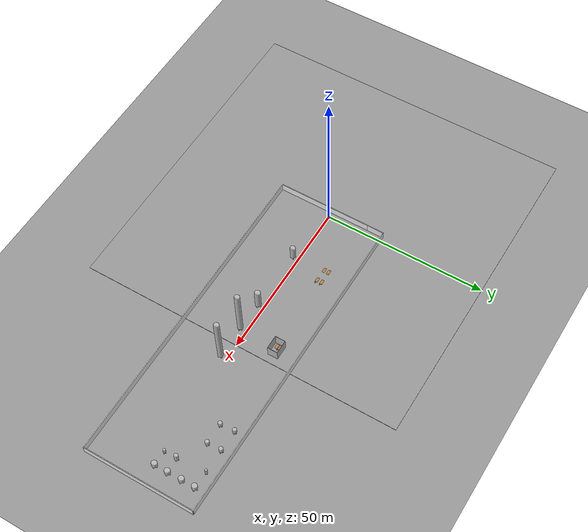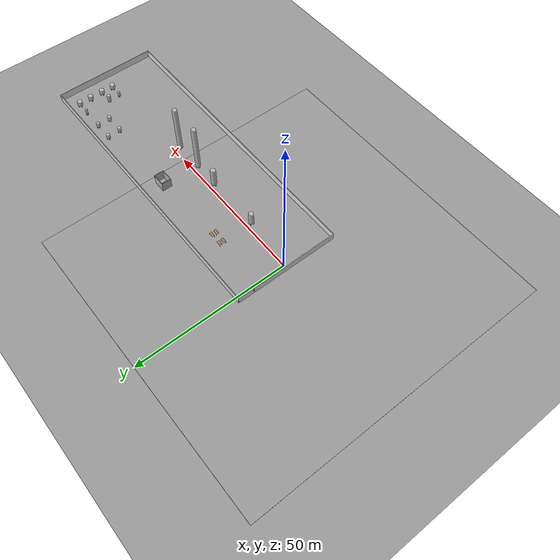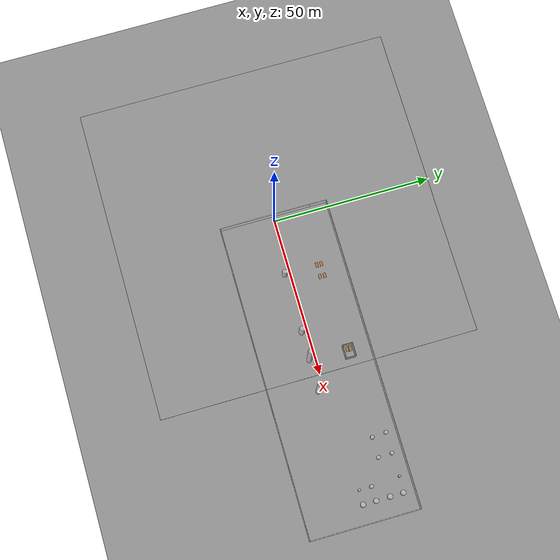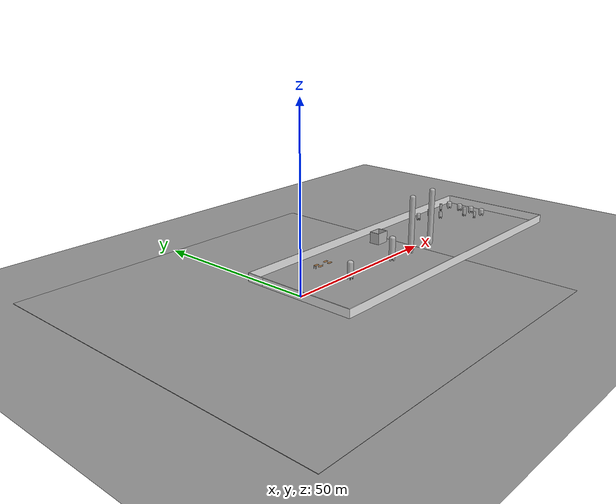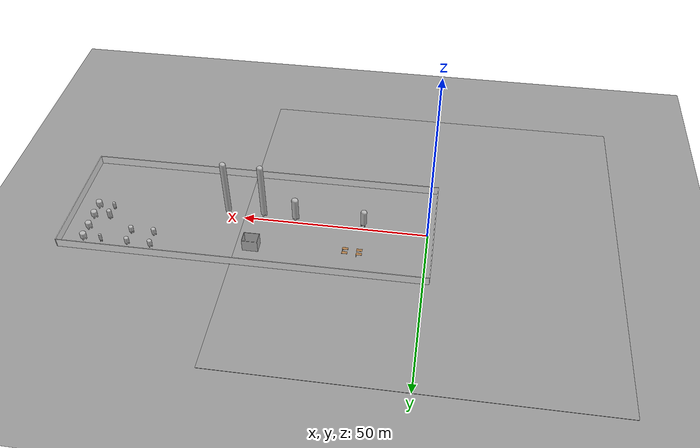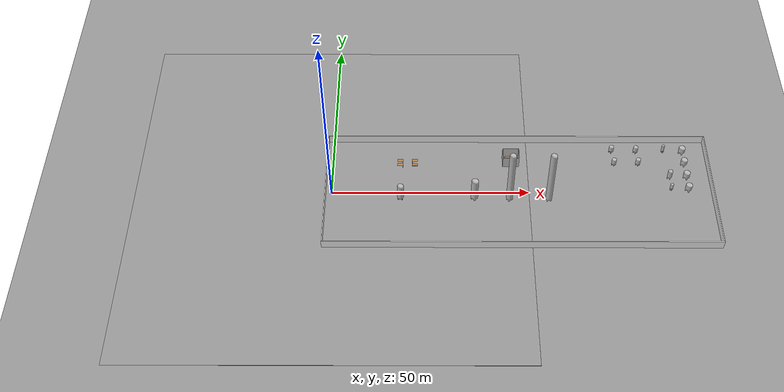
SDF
<sdf version="1.4">
 <world name="default">
  <model name="fen_li">
   <link name="fen_li">
    <inertial>
     <pose>7.446e-16 -1.0299 6.10863e-17 0 -0 0</pose>
     <mass>878.42</mass>
     <inertia>
      <ixx>368.416</ixx>
      <ixy>-7.33154e-13</ixy>
      <ixz>2.02177e-16</ixz>
      <iyy>62.3173</iyy>
      <iyz>1.79271e-14</iyz>
      <izz>368.416</izz>
     </inertia>
    </inertial>
    <collision name="fen_li_collision">
     <pose>0 0 0 1.5708 -0 0</pose>
     <geometry><mesh><scale>1 1 1</scale><uri>model://fen_li/meshes/fen_li.STL</uri></mesh></geometry>
    </collision>
    <visual name="fen_li_visual">
     <pose>0 0 0 1.5708 -0 0</pose>
     <geometry><mesh><scale>1 1 1</scale><uri>model://fen_li/meshes/fen_li.STL</uri></mesh></geometry>
    </visual>
    <velocity_decay><linear>0</linear><angular>0</angular></velocity_decay>
   </link>
   <pose>85.6471 13.8557 2.5 1.57079 6e-06 2.88261</pose>
   <static>0</static>
  </model>
  <model name="R1501">
   <link name="R1501">
    <inertial>
     <pose>1.0225e-15 -0.88398 5.22725e-17 0 -0 0</pose>
     <mass>822.78</mass>
     <inertia>
      <ixx>260.169</ixx>
      <ixy>-8.22438e-13</ixy>
      <ixz>3.24849e-16</ixz>
      <iyy>66.0733</iyy>
      <iyz>1.14038e-14</iyz>
      <izz>260.169</izz>
     </inertia>
    </inertial>
    <collision name="R1501_collision">
     <pose>0 0 0 1.5708 -0 0</pose>
     <geometry><mesh><scale>1 1 1</scale><uri>model://R1501/meshes/R1501.STL</uri></mesh></geometry>
    </collision>
    <visual name="R1501_visual">
     <pose>0 0 0 1.5708 -0 0</pose>
     <geometry><mesh><scale>1 1 1</scale><uri>model://R1501/meshes/R1501.STL</uri></mesh></geometry>
    </visual>
    <velocity_decay><linear>0</linear><angular>0</angular></velocity_decay>
   </link>
   <pose>86.3008 1.22061 2.2 1.57079 8e-06 0.053566</pose>
   <static>0</static>
  </model>
  <model name="T1302">
   <link name="T1302">
    <inertial>
     <pose>3.0268e-05 -3.0578 1.6594e-05 0 -0 0</pose>
     <mass>16697</mass>
     <inertia>
      <ixx>64278.2</ixx>
      <ixy>1.72229</ixy>
      <ixz>-8.3864e-06</ixz>
      <iyy>6721.57</iyy>
      <iyz>-0.944222</iyz>
      <izz>64279</izz>
     </inertia>
    </inertial>
    <collision name="T1302_collision">
     <pose>0 0 0 1.5708 -0 0</pose>
     <geometry><mesh><scale>1 1 1</scale><uri>model://T1302/meshes/T1302.STL</uri></mesh></geometry>
    </collision>
    <visual name="T1302_visual">
     <pose>0 0 0 1.5708 -0 0</pose>
     <geometry><mesh><scale>1 1 1</scale><uri>model://T1302/meshes/T1302.STL</uri></mesh></geometry>
    </visual>
    <velocity_decay><linear>0</linear><angular>0</angular></velocity_decay>
   </link>
   <pose>36.086 -1.71425 0.7 -1.5708 -0 0.078369</pose>
   <static>0</static>
  </model>
  <model name="T1501">
   <link name="T1501">
    <inertial>
     <pose>-6.1525e-05 -1.2595 -3.0762e-05 0 -0 0</pose>
     <mass>2677.9</mass>
     <inertia>
      <ixx>1632.16</ixx>
      <ixy>0.220862</ixy>
      <ixz>-5.06835e-06</ixz>
      <iyy>481.151</iyy>
      <iyz>-0.110431</iyz>
      <izz>1632.31</izz>
     </inertia>
    </inertial>
    <collision name="T1501_collision">
     <pose>0 0 0 1.5708 -0 0</pose>
     <geometry><mesh><scale>1 1 1</scale><uri>model://T1501/meshes/T1501.STL</uri></mesh></geometry>
    </collision>
    <visual name="T1501_visual">
     <pose>0 0 0 1.5708 -0 0</pose>
     <geometry><mesh><scale>1 1 1</scale><uri>model://T1501/meshes/T1501.STL</uri></mesh></geometry>
    </visual>
    <velocity_decay><linear>0</linear><angular>0</angular></velocity_decay>
   </link>
   <pose>86.2855 4.99871 2.95 1.57079 -3e-06 0.210719</pose>
   <static>0</static>
  </model>
  <model name="v1301">
   <link name="v1301">
    <inertial>
     <pose>-2.9698e-17 -2.1428 -7.9195e-06 0 -0 0</pose>
     <mass>9579.6</mass>
     <inertia>
      <ixx>17997.8</ixx>
      <ixy>-4.99284e-13</ixy>
      <ixz>-3.51778e-15</ixz>
      <iyy>3237.68</iyy>
      <iyz>0.189116</iyz>
      <izz>17997.9</izz>
     </inertia>
    </inertial>
    <collision name="v1301_collision">
     <pose>0 0 0 1.5708 -0 0</pose>
     <geometry><mesh><scale>1 1 1</scale><uri>model://v1301/meshes/v1301.STL</uri></mesh></geometry>
    </collision>
    <visual name="v1301_visual">
     <pose>0 0 0 1.5708 -0 0</pose>
     <geometry><mesh><scale>1 1 1</scale><uri>model://v1301/meshes/v1301.STL</uri></mesh></geometry>
    </visual>
    <velocity_decay><linear>0</linear><angular>0</angular></velocity_decay>
   </link>
   <pose>17.4218 -1.74122 0.700005 -1.57079 -3e-06 -0.971659</pose>
   <static>0</static>
  </model>
  <model name="xi_jian_ye">
   <link name="xi_jian_ye">
    <inertial>
     <pose>0.00017423 -0.62032 -0.00017423 0 -0 0</pose>
     <mass>3467.2</mass>
     <inertia>
      <ixx>1530.55</ixx>
      <ixy>0.586183</ixy>
      <ixz>-0.000931962</ixz>
      <iyy>1180.52</iyy>
      <iyz>0.586183</iyz>
      <izz>1530.55</izz>
     </inertia>
    </inertial>
    <collision name="xi_jian_ye_collision">
     <pose>0 0 0 1.5708 -0 0</pose>
     <geometry><mesh><scale>1 1 1</scale><uri>model://xi_jian_ye/meshes/xi_jian_ye.STL</uri></mesh></geometry>
    </collision>
    <visual name="xi_jian_ye_visual">
     <pose>0 0 0 1.5708 -0 0</pose>
     <geometry><mesh><scale>1 1 1</scale><uri>model://xi_jian_ye/meshes/xi_jian_ye.STL</uri></mesh></geometry>
    </visual>
    <velocity_decay><linear>0</linear><angular>0</angular></velocity_decay>
   </link>
   <pose>90.5802 13.5488 0.7 -1.5708 -3.46945e-18 0.048065</pose>
   <static>0</static>
  </model>
  <model name="xi _shou_jie_xi">
   <link name="xi _shou_jie_xi">
    <inertial>
     <pose>4.1904e-07 -8.4378 3.2931e-07 0 -0 0</pose>
     <mass>35590</mass>
     <inertia>
      <ixx>830006</ixx>
      <ixy>-0.125458</ixy>
      <ixz>-4.91125e-09</ixz>
      <iyy>12075.2</iyy>
      <iyz>0.0985924</iyz>
      <izz>830006</izz>
     </inertia>
    </inertial>
    <collision name="xi _shou_jie_xi_collision">
     <pose>0 0 0 1.5708 -0 0</pose>
     <geometry>
      <mesh><scale>1 1 1</scale><uri>model://xi _shou_jie_xi/meshes/xi _shou_jie_xi.STL</uri></mesh>
     </geometry>
    </collision>
    <visual name="xi _shou_jie_xi_visual">
     <pose>0 0 0 1.5708 -0 0</pose>
     <geometry>
      <mesh><scale>1 1 1</scale><uri>model://xi _shou_jie_xi/meshes/xi _shou_jie_xi.STL</uri></mesh>
     </geometry>
    </visual>
    <velocity_decay><linear>0</linear><angular>0</angular></velocity_decay>
   </link>
   <pose>44.9385 -1.97672 17.2 1.57079 -1e-06 2.99603</pose>
   <static>0</static>
  </model>
  <model name="ye_hua">
   <link name="ye_hua">
    <inertial>
     <pose>7.253e-17 -0.87808 1.33782e-16 0 -0 0</pose>
     <mass>1864.4</mass>
     <inertia>
      <ixx>689.15</ixx>
      <ixy>-1.59359e-13</ixy>
      <ixz>6.93603e-14</ixz>
      <iyy>337.927</iyy>
      <iyz>1.62166e-13</iyz>
      <izz>689.15</izz>
     </inertia>
    </inertial>
    <collision name="ye_hua_collision">
     <pose>0 0 0 1.5708 -0 0</pose>
     <geometry><mesh><scale>1 1 1</scale><uri>model://ye_hua/meshes/ye_hua.STL</uri></mesh></geometry>
    </collision>
    <visual name="ye_hua_visual">
     <pose>0 0 0 1.5708 -0 0</pose>
     <geometry><mesh><scale>1 1 1</scale><uri>model://ye_hua/meshes/ye_hua.STL</uri></mesh></geometry>
    </visual>
    <velocity_decay><linear>0</linear><angular>0</angular></velocity_decay>
   </link>
   <pose>78.5301 13.7445 2.2 1.57079 -1e-06 0.01207</pose>
   <static>0</static>
  </model>
  <model name="xi _shou_jie_xi_0">
   <link name="xi _shou_jie_xi">
    <inertial>
     <pose>4.1904e-07 -8.4378 3.2931e-07 0 -0 0</pose>
     <mass>35590</mass>
     <inertia>
      <ixx>830006</ixx>
      <ixy>-0.125458</ixy>
      <ixz>-4.91125e-09</ixz>
      <iyy>12075.2</iyy>
      <iyz>0.0985924</iyz>
      <izz>830006</izz>
     </inertia>
    </inertial>
    <collision name="xi _shou_jie_xi_collision">
     <pose>0 0 0 1.5708 -0 0</pose>
     <geometry>
      <mesh><scale>1 1 1</scale><uri>model://xi _shou_jie_xi/meshes/xi _shou_jie_xi.STL</uri></mesh>
     </geometry>
    </collision>
    <visual name="xi _shou_jie_xi_visual">
     <pose>0 0 0 1.5708 -0 0</pose>
     <geometry>
      <mesh><scale>1 1 1</scale><uri>model://xi _shou_jie_xi/meshes/xi _shou_jie_xi.STL</uri></mesh>
     </geometry>
    </visual>
    <velocity_decay><linear>0</linear><angular>0</angular></velocity_decay>
   </link>
   <pose>54.8757 -1.99512 17.2 1.57079 2e-06 -2.16664</pose>
   <static>0</static>
  </model>
  <model name="ye_hua_0">
   <link name="ye_hua">
    <inertial>
     <pose>7.253e-17 -0.87808 1.33782e-16 0 -0 0</pose>
     <mass>1864.4</mass>
     <inertia>
      <ixx>689.15</ixx>
      <ixy>-1.59359e-13</ixy>
      <ixz>6.93603e-14</ixz>
      <iyy>337.927</iyy>
      <iyz>1.62166e-13</iyz>
      <izz>689.15</izz>
     </inertia>
    </inertial>
    <collision name="ye_hua_collision">
     <pose>0 0 0 1.5708 -0 0</pose>
     <geometry><mesh><scale>1 1 1</scale><uri>model://ye_hua/meshes/ye_hua.STL</uri></mesh></geometry>
    </collision>
    <visual name="ye_hua_visual">
     <pose>0 0 0 1.5708 -0 0</pose>
     <geometry><mesh><scale>1 1 1</scale><uri>model://ye_hua/meshes/ye_hua.STL</uri></mesh></geometry>
    </visual>
    <velocity_decay><linear>0</linear><angular>0</angular></velocity_decay>
   </link>
   <pose>72.2072 13.8499 2.20001 1.57081 2e-06 -0.00253</pose>
   <static>0</static>
  </model>
  <model name="ye_hua_1">
   <link name="ye_hua">
    <inertial>
     <pose>7.253e-17 -0.87808 1.33782e-16 0 -0 0</pose>
     <mass>1864.4</mass>
     <inertia>
      <ixx>689.15</ixx>
      <ixy>-1.59359e-13</ixy>
      <ixz>6.93603e-14</ixz>
      <iyy>337.927</iyy>
      <iyz>1.62166e-13</iyz>
      <izz>689.15</izz>
     </inertia>
    </inertial>
    <collision name="ye_hua_collision">
     <pose>0 0 0 1.5708 -0 0</pose>
     <geometry><mesh><scale>1 1 1</scale><uri>model://ye_hua/meshes/ye_hua.STL</uri></mesh></geometry>
    </collision>
    <visual name="ye_hua_visual">
     <pose>0 0 0 1.5708 -0 0</pose>
     <geometry><mesh><scale>1 1 1</scale><uri>model://ye_hua/meshes/ye_hua.STL</uri></mesh></geometry>
    </visual>
    <velocity_decay><linear>0</linear><angular>0</angular></velocity_decay>
   </link>
   <pose>78.694 9.5274 2.2 1.57079 -0 0.005309</pose>
   <static>0</static>
  </model>
  <model name="ye_hua_2">
   <link name="ye_hua">
    <inertial>
     <pose>7.253e-17 -0.87808 1.33782e-16 0 -0 0</pose>
     <mass>1864.4</mass>
     <inertia>
      <ixx>689.15</ixx>
      <ixy>-1.59359e-13</ixy>
      <ixz>6.93603e-14</ixz>
      <iyy>337.927</iyy>
      <iyz>1.62166e-13</iyz>
      <izz>689.15</izz>
     </inertia>
    </inertial>
    <collision name="ye_hua_collision">
     <pose>0 0 0 1.5708 -0 0</pose>
     <geometry><mesh><scale>1 1 1</scale><uri>model://ye_hua/meshes/ye_hua.STL</uri></mesh></geometry>
    </collision>
    <visual name="ye_hua_visual">
     <pose>0 0 0 1.5708 -0 0</pose>
     <geometry><mesh><scale>1 1 1</scale><uri>model://ye_hua/meshes/ye_hua.STL</uri></mesh></geometry>
    </visual>
    <velocity_decay><linear>0</linear><angular>0</angular></velocity_decay>
   </link>
   <pose>72.4926 9.50476 2.2 1.5708 2e-06 -0.003768</pose>
   <static>0</static>
  </model>
  <model name="xi_jian_ye_0">
   <link name="xi_jian_ye">
    <inertial>
     <pose>0.00017423 -0.62032 -0.00017423 0 -0 0</pose>
     <mass>3467.2</mass>
     <inertia>
      <ixx>1530.55</ixx>
      <ixy>0.586183</ixy>
      <ixz>-0.000931962</ixz>
      <iyy>1180.52</iyy>
      <iyz>0.586183</iyz>
      <izz>1530.55</izz>
     </inertia>
    </inertial>
    <collision name="xi_jian_ye_collision">
     <pose>0 0 0 1.5708 -0 0</pose>
     <geometry><mesh><scale>1 1 1</scale><uri>model://xi_jian_ye/meshes/xi_jian_ye.STL</uri></mesh></geometry>
    </collision>
    <visual name="xi_jian_ye_visual">
     <pose>0 0 0 1.5708 -0 0</pose>
     <geometry><mesh><scale>1 1 1</scale><uri>model://xi_jian_ye/meshes/xi_jian_ye.STL</uri></mesh></geometry>
    </visual>
    <velocity_decay><linear>0</linear><angular>0</angular></velocity_decay>
   </link>
   <pose>90.5991 9.48083 0.700002 -1.5708 -2e-06 0.037426</pose>
   <static>0</static>
  </model>
  <model name="xi_jian_ye_1">
   <link name="xi_jian_ye">
    <inertial>
     <pose>0.00017423 -0.62032 -0.00017423 0 -0 0</pose>
     <mass>3467.2</mass>
     <inertia>
      <ixx>1530.55</ixx>
      <ixy>0.586183</ixy>
      <ixz>-0.000931962</ixz>
      <iyy>1180.52</iyy>
      <iyz>0.586183</iyz>
      <izz>1530.55</izz>
     </inertia>
    </inertial>
    <collision name="xi_jian_ye_collision">
     <pose>0 0 0 1.5708 -0 0</pose>
     <geometry><mesh><scale>1 1 1</scale><uri>model://xi_jian_ye/meshes/xi_jian_ye.STL</uri></mesh></geometry>
    </collision>
    <visual name="xi_jian_ye_visual">
     <pose>0 0 0 1.5708 -0 0</pose>
     <geometry><mesh><scale>1 1 1</scale><uri>model://xi_jian_ye/meshes/xi_jian_ye.STL</uri></mesh></geometry>
    </visual>
    <velocity_decay><linear>0</linear><angular>0</angular></velocity_decay>
   </link>
   <pose>90.6386 1.0942 0.700004 -1.5708 1e-06 -3.12011</pose>
   <static>0</static>
  </model>
  <model name="xi_jian_ye_2">
   <link name="xi_jian_ye">
    <inertial>
     <pose>0.00017423 -0.62032 -0.00017423 0 -0 0</pose>
     <mass>3467.2</mass>
     <inertia>
      <ixx>1530.55</ixx>
      <ixy>0.586183</ixy>
      <ixz>-0.000931962</ixz>
      <iyy>1180.52</iyy>
      <iyz>0.586183</iyz>
      <izz>1530.55</izz>
     </inertia>
    </inertial>
    <collision name="xi_jian_ye_collision">
     <pose>0 0 0 1.5708 -0 0</pose>
     <geometry><mesh><scale>1 1 1</scale><uri>model://xi_jian_ye/meshes/xi_jian_ye.STL</uri></mesh></geometry>
    </collision>
    <visual name="xi_jian_ye_visual">
     <pose>0 0 0 1.5708 -0 0</pose>
     <geometry><mesh><scale>1 1 1</scale><uri>model://xi_jian_ye/meshes/xi_jian_ye.STL</uri></mesh></geometry>
    </visual>
    <velocity_decay><linear>0</linear><angular>0</angular></velocity_decay>
   </link>
   <pose>90.6584 5.1583 0.7 -1.5708 1e-06 0.031675</pose>
   <static>0</static>
  </model>
  <model name="cui_hua">
   <pose>30.999 -11.225 0 0 -0 0</pose>
   <link name="Wall_10">
    <collision name="Wall_10_Collision">
     <geometry><box><size>34.3428 0.2 2.5</size></box></geometry>
     <pose>0 0 1.25 0 -0 0</pose>
    </collision>
    <visual name="Wall_10_Visual">
     <pose>0 0 1.25 0 -0 0</pose>
     <geometry><box><size>34.3428 0.2 2.5</size></box></geometry>
     <material>
      <script><uri>file://media/materials/scripts/gazebo.material</uri><name>Gazebo/White</name></script>
     </material>
    </visual>
    <velocity_decay><linear>0</linear><angular>0</angular></velocity_decay>
    <pose>65.5154 11.2938 0 0 -0 1.5708</pose>
   </link>
   <link name="Wall_11">
    <collision name="Wall_11_Collision">
     <geometry><box><size>98.3045 0.2 2.5</size></box></geometry>
     <pose>0 0 1.25 0 -0 0</pose>
    </collision>
    <visual name="Wall_11_Visual">
     <pose>0 0 1.25 0 -0 0</pose>
     <geometry><box><size>98.3045 0.2 2.5</size></box></geometry>
     <material>
      <script><uri>file://media/materials/scripts/gazebo.material</uri><name>Gazebo/White</name></script>
     </material>
    </visual>
    <velocity_decay><linear>0</linear><angular>0</angular></velocity_decay>
    <pose>16.4631 28.3652 0 0 -0 3.14159</pose>
   </link>
   <link name="Wall_12">
    <collision name="Wall_12_Collision">
     <geometry><box><size>5.42808 0.2 2.5</size></box></geometry>
     <pose>0 0 1.25 0 -0 0</pose>
    </collision>
    <visual name="Wall_12_Visual">
     <pose>0 0 1.25 0 -0 0</pose>
     <geometry><box><size>5.42808 0.2 2.5</size></box></geometry>
     <material>
      <script><uri>file://media/materials/scripts/gazebo.material</uri><name>Gazebo/White</name></script>
     </material>
    </visual>
    <velocity_decay><linear>0</linear><angular>0</angular></velocity_decay>
    <pose>-32.6176 25.7513 0 0 0 -1.58168</pose>
   </link>
   <link name="Wall_8">
    <collision name="Wall_8_Collision">
     <geometry><box><size>29.115 0.2 2.5</size></box></geometry>
     <pose>0 0 1.25 0 -0 0</pose>
    </collision>
    <visual name="Wall_8_Visual">
     <pose>0 0 1.25 0 -0 0</pose>
     <geometry><box><size>29.115 0.2 2.5</size></box></geometry>
     <material>
      <script><uri>file://media/materials/scripts/gazebo.material</uri><name>Gazebo/White</name></script>
     </material>
    </visual>
    <velocity_decay><linear>0</linear><angular>0</angular></velocity_decay>
    <pose>-32.646 8.67987 0 0 0 -1.5708</pose>
   </link>
   <link name="Wall_9">
    <collision name="Wall_9_Collision">
     <geometry><box><size>98.3614 0.2 2.5</size></box></geometry>
     <pose>0 0 1.25 0 -0 0</pose>
    </collision>
    <visual name="Wall_9_Visual">
     <pose>0 0 1.25 0 -0 0</pose>
     <geometry><box><size>98.3614 0.2 2.5</size></box></geometry>
     <material>
      <script><uri>file://media/materials/scripts/gazebo.material</uri><name>Gazebo/White</name></script>
     </material>
    </visual>
    <velocity_decay><linear>0</linear><angular>0</angular></velocity_decay>
    <pose>16.4347 -5.77766 0 0 -0 0</pose>
   </link>
   <static>1</static>
  </model>
  <model name="kong_zhi_shi">
   <link name="kong_zhi_shi">
    <inertial>
     <pose>4.4409e-16 -1.75 -1.12645e-15 0 -0 0</pose>
     <mass>5040</mass>
     <inertia>
      <ixx>13785.8</ixx>
      <ixy>-3.56559e-12</ixy>
      <ixz>-1.00614e-11</ixz>
      <iyy>21789.6</iyy>
      <iyz>-2.772e-12</iyz>
      <izz>18293.8</izz>
     </inertia>
    </inertial>
    <collision name="kong_zhi_shi_collision">
     <pose>0 0 0 1.5708 -0 0</pose>
     <geometry><mesh><scale>1 1 1</scale><uri>model://kong_zhi_shi/meshes/kong_zhi_shi.STL</uri></mesh></geometry>
    </collision>
    <visual name="kong_zhi_shi_visual">
     <pose>0 0 0 1.5708 -0 0</pose>
     <geometry><mesh><scale>1 1 1</scale><uri>model://kong_zhi_shi/meshes/kong_zhi_shi.STL</uri></mesh></geometry>
    </visual>
    <velocity_decay><linear>0</linear><angular>0</angular></velocity_decay>
   </link>
   <pose>45.7421 10.3464 -0 -1.5708 -0 0.002007</pose>
   <static>0</static>
  </model>
  <model name="ground_plane_0">
   <static>1</static>
   <link name="link">
    <collision name="collision">
     <geometry><plane><normal>0 0 1</normal><size>100 100</size></plane></geometry>
     <surface><friction><ode><mu>100</mu><mu2>50</mu2></ode></friction></surface>
    </collision>
    <visual name="visual">
     <cast_shadows>0</cast_shadows>
     <geometry><plane><normal>0 0 1</normal><size>100 100</size></plane></geometry>
     <material>
      <script><uri>file://media/materials/scripts/gazebo.material</uri><name>Gazebo/Grey</name></script>
     </material>
    </visual>
    <velocity_decay><linear>0</linear><angular>0</angular></velocity_decay>
   </link>
   <pose>100 0 0 0 -0 0</pose>
  </model>
  <model name="ground_plane_2">
   <static>1</static>
   <link name="link">
    <collision name="collision">
     <geometry><plane><normal>0 0 1</normal><size>100 100</size></plane></geometry>
     <surface><friction><ode><mu>100</mu><mu2>50</mu2></ode></friction></surface>
    </collision>
    <visual name="visual">
     <cast_shadows>0</cast_shadows>
     <geometry><plane><normal>0 0 1</normal><size>100 100</size></plane></geometry>
     <material>
      <script><uri>file://media/materials/scripts/gazebo.material</uri><name>Gazebo/Grey</name></script>
     </material>
    </visual>
    <velocity_decay><linear>0</linear><angular>0</angular></velocity_decay>
   </link>
  </model>
  <model name="table">
   <static>1</static>
   <link name="link">
    <collision name="surface">
     <pose>0 0 1 0 -0 0</pose>
     <geometry><box><size>1.5 0.8 0.03</size></box></geometry>
     <surface><friction><ode><mu>0.6</mu><mu2>0.6</mu2></ode></friction></surface>
    </collision>
    <visual name="visual1">
     <pose>0 0 1 0 -0 0</pose>
     <geometry><box><size>1.5 0.8 0.03</size></box></geometry>
     <material>
      <script><uri>file://media/materials/scripts/gazebo.material</uri><name>Gazebo/Wood</name></script>
     </material>
    </visual>
    <collision name="front_left_leg">
     <pose>0.68 0.38 0.5 0 -0 0</pose>
     <geometry><cylinder><radius>0.02</radius><length>1</length></cylinder></geometry>
    </collision>
    <visual name="front_left_leg">
     <pose>0.68 0.38 0.5 0 -0 0</pose>
     <geometry><cylinder><radius>0.02</radius><length>1</length></cylinder></geometry>
     <material>
      <script><uri>file://media/materials/scripts/gazebo.material</uri><name>Gazebo/Grey</name></script>
     </material>
    </visual>
    <collision name="front_right_leg">
     <pose>0.68 -0.38 0.5 0 -0 0</pose>
     <geometry><cylinder><radius>0.02</radius><length>1</length></cylinder></geometry>
    </collision>
    <visual name="front_right_leg">
     <pose>0.68 -0.38 0.5 0 -0 0</pose>
     <geometry><cylinder><radius>0.02</radius><length>1</length></cylinder></geometry>
     <material>
      <script><uri>file://media/materials/scripts/gazebo.material</uri><name>Gazebo/Grey</name></script>
     </material>
    </visual>
    <collision name="back_right_leg">
     <pose>-0.68 -0.38 0.5 0 -0 0</pose>
     <geometry><cylinder><radius>0.02</radius><length>1</length></cylinder></geometry>
    </collision>
    <visual name="back_right_leg">
     <pose>-0.68 -0.38 0.5 0 -0 0</pose>
     <geometry><cylinder><radius>0.02</radius><length>1</length></cylinder></geometry>
     <material>
      <script><uri>file://media/materials/scripts/gazebo.material</uri><name>Gazebo/Grey</name></script>
     </material>
    </visual>
    <collision name="back_left_leg">
     <pose>-0.68 0.38 0.5 0 -0 0</pose>
     <geometry><cylinder><radius>0.02</radius><length>1</length></cylinder></geometry>
    </collision>
    <visual name="back_left_leg">
     <pose>-0.68 0.38 0.5 0 -0 0</pose>
     <geometry><cylinder><radius>0.02</radius><length>1</length></cylinder></geometry>
     <material>
      <script><uri>file://media/materials/scripts/gazebo.material</uri><name>Gazebo/Grey</name></script>
     </material>
    </visual>
    <velocity_decay><linear>0</linear><angular>0</angular></velocity_decay>
   </link>
   <pose>17.2061 10.0068 0 0 -0 0</pose>
  </model>
  <model name="table_0">
   <static>1</static>
   <link name="link">
    <collision name="surface">
     <pose>0 0 1 0 -0 0</pose>
     <geometry><box><size>1.5 0.8 0.03</size></box></geometry>
     <surface><friction><ode><mu>0.6</mu><mu2>0.6</mu2></ode></friction></surface>
    </collision>
    <visual name="visual1">
     <pose>0 0 1 0 -0 0</pose>
     <geometry><box><size>1.5 0.8 0.03</size></box></geometry>
     <material>
      <script><uri>file://media/materials/scripts/gazebo.material</uri><name>Gazebo/Wood</name></script>
     </material>
    </visual>
    <collision name="front_left_leg">
     <pose>0.68 0.38 0.5 0 -0 0</pose>
     <geometry><cylinder><radius>0.02</radius><length>1</length></cylinder></geometry>
    </collision>
    <visual name="front_left_leg">
     <pose>0.68 0.38 0.5 0 -0 0</pose>
     <geometry><cylinder><radius>0.02</radius><length>1</length></cylinder></geometry>
     <material>
      <script><uri>file://media/materials/scripts/gazebo.material</uri><name>Gazebo/Grey</name></script>
     </material>
    </visual>
    <collision name="front_right_leg">
     <pose>0.68 -0.38 0.5 0 -0 0</pose>
     <geometry><cylinder><radius>0.02</radius><length>1</length></cylinder></geometry>
    </collision>
    <visual name="front_right_leg">
     <pose>0.68 -0.38 0.5 0 -0 0</pose>
     <geometry><cylinder><radius>0.02</radius><length>1</length></cylinder></geometry>
     <material>
      <script><uri>file://media/materials/scripts/gazebo.material</uri><name>Gazebo/Grey</name></script>
     </material>
    </visual>
    <collision name="back_right_leg">
     <pose>-0.68 -0.38 0.5 0 -0 0</pose>
     <geometry><cylinder><radius>0.02</radius><length>1</length></cylinder></geometry>
    </collision>
    <visual name="back_right_leg">
     <pose>-0.68 -0.38 0.5 0 -0 0</pose>
     <geometry><cylinder><radius>0.02</radius><length>1</length></cylinder></geometry>
     <material>
      <script><uri>file://media/materials/scripts/gazebo.material</uri><name>Gazebo/Grey</name></script>
     </material>
    </visual>
    <collision name="back_left_leg">
     <pose>-0.68 0.38 0.5 0 -0 0</pose>
     <geometry><cylinder><radius>0.02</radius><length>1</length></cylinder></geometry>
    </collision>
    <visual name="back_left_leg">
     <pose>-0.68 0.38 0.5 0 -0 0</pose>
     <geometry><cylinder><radius>0.02</radius><length>1</length></cylinder></geometry>
     <material>
      <script><uri>file://media/materials/scripts/gazebo.material</uri><name>Gazebo/Grey</name></script>
     </material>
    </visual>
    <velocity_decay><linear>0</linear><angular>0</angular></velocity_decay>
   </link>
   <pose>21 10 0 0 -0 0</pose>
  </model>
  <model name="table_1">
   <static>1</static>
   <link name="link">
    <collision name="surface">
     <pose>0 0 1 0 -0 0</pose>
     <geometry><box><size>1.5 0.8 0.03</size></box></geometry>
     <surface><friction><ode><mu>0.6</mu><mu2>0.6</mu2></ode></friction></surface>
    </collision>
    <visual name="visual1">
     <pose>0 0 1 0 -0 0</pose>
     <geometry><box><size>1.5 0.8 0.03</size></box></geometry>
     <material>
      <script><uri>file://media/materials/scripts/gazebo.material</uri><name>Gazebo/Wood</name></script>
     </material>
    </visual>
    <collision name="front_left_leg">
     <pose>0.68 0.38 0.5 0 -0 0</pose>
     <geometry><cylinder><radius>0.02</radius><length>1</length></cylinder></geometry>
    </collision>
    <visual name="front_left_leg">
     <pose>0.68 0.38 0.5 0 -0 0</pose>
     <geometry><cylinder><radius>0.02</radius><length>1</length></cylinder></geometry>
     <material>
      <script><uri>file://media/materials/scripts/gazebo.material</uri><name>Gazebo/Grey</name></script>
     </material>
    </visual>
    <collision name="front_right_leg">
     <pose>0.68 -0.38 0.5 0 -0 0</pose>
     <geometry><cylinder><radius>0.02</radius><length>1</length></cylinder></geometry>
    </collision>
    <visual name="front_right_leg">
     <pose>0.68 -0.38 0.5 0 -0 0</pose>
     <geometry><cylinder><radius>0.02</radius><length>1</length></cylinder></geometry>
     <material>
      <script><uri>file://media/materials/scripts/gazebo.material</uri><name>Gazebo/Grey</name></script>
     </material>
    </visual>
    <collision name="back_right_leg">
     <pose>-0.68 -0.38 0.5 0 -0 0</pose>
     <geometry><cylinder><radius>0.02</radius><length>1</length></cylinder></geometry>
    </collision>
    <visual name="back_right_leg">
     <pose>-0.68 -0.38 0.5 0 -0 0</pose>
     <geometry><cylinder><radius>0.02</radius><length>1</length></cylinder></geometry>
     <material>
      <script><uri>file://media/materials/scripts/gazebo.material</uri><name>Gazebo/Grey</name></script>
     </material>
    </visual>
    <collision name="back_left_leg">
     <pose>-0.68 0.38 0.5 0 -0 0</pose>
     <geometry><cylinder><radius>0.02</radius><length>1</length></cylinder></geometry>
    </collision>
    <visual name="back_left_leg">
     <pose>-0.68 0.38 0.5 0 -0 0</pose>
     <geometry><cylinder><radius>0.02</radius><length>1</length></cylinder></geometry>
     <material>
      <script><uri>file://media/materials/scripts/gazebo.material</uri><name>Gazebo/Grey</name></script>
     </material>
    </visual>
    <velocity_decay><linear>0</linear><angular>0</angular></velocity_decay>
   </link>
   <pose>21 8.51656 0 0 -0 0</pose>
  </model>
  <model name="table_2">
   <static>1</static>
   <link name="link">
    <collision name="surface">
     <pose>0 0 1 0 -0 0</pose>
     <geometry><box><size>1.5 0.8 0.03</size></box></geometry>
     <surface><friction><ode><mu>0.6</mu><mu2>0.6</mu2></ode></friction></surface>
    </collision>
    <visual name="visual1">
     <pose>0 0 1 0 -0 0</pose>
     <geometry><box><size>1.5 0.8 0.03</size></box></geometry>
     <material>
      <script><uri>file://media/materials/scripts/gazebo.material</uri><name>Gazebo/Wood</name></script>
     </material>
    </visual>
    <collision name="front_left_leg">
     <pose>0.68 0.38 0.5 0 -0 0</pose>
     <geometry><cylinder><radius>0.02</radius><length>1</length></cylinder></geometry>
    </collision>
    <visual name="front_left_leg">
     <pose>0.68 0.38 0.5 0 -0 0</pose>
     <geometry><cylinder><radius>0.02</radius><length>1</length></cylinder></geometry>
     <material>
      <script><uri>file://media/materials/scripts/gazebo.material</uri><name>Gazebo/Grey</name></script>
     </material>
    </visual>
    <collision name="front_right_leg">
     <pose>0.68 -0.38 0.5 0 -0 0</pose>
     <geometry><cylinder><radius>0.02</radius><length>1</length></cylinder></geometry>
    </collision>
    <visual name="front_right_leg">
     <pose>0.68 -0.38 0.5 0 -0 0</pose>
     <geometry><cylinder><radius>0.02</radius><length>1</length></cylinder></geometry>
     <material>
      <script><uri>file://media/materials/scripts/gazebo.material</uri><name>Gazebo/Grey</name></script>
     </material>
    </visual>
    <collision name="back_right_leg">
     <pose>-0.68 -0.38 0.5 0 -0 0</pose>
     <geometry><cylinder><radius>0.02</radius><length>1</length></cylinder></geometry>
    </collision>
    <visual name="back_right_leg">
     <pose>-0.68 -0.38 0.5 0 -0 0</pose>
     <geometry><cylinder><radius>0.02</radius><length>1</length></cylinder></geometry>
     <material>
      <script><uri>file://media/materials/scripts/gazebo.material</uri><name>Gazebo/Grey</name></script>
     </material>
    </visual>
    <collision name="back_left_leg">
     <pose>-0.68 0.38 0.5 0 -0 0</pose>
     <geometry><cylinder><radius>0.02</radius><length>1</length></cylinder></geometry>
    </collision>
    <visual name="back_left_leg">
     <pose>-0.68 0.38 0.5 0 -0 0</pose>
     <geometry><cylinder><radius>0.02</radius><length>1</length></cylinder></geometry>
     <material>
      <script><uri>file://media/materials/scripts/gazebo.material</uri><name>Gazebo/Grey</name></script>
     </material>
    </visual>
    <velocity_decay><linear>0</linear><angular>0</angular></velocity_decay>
   </link>
   <pose>17.2213 8.61105 0 0 -0 0</pose>
  </model>
  <model name="table_3">
   <static>1</static>
   <link name="link">
    <collision name="surface">
     <pose>0 0 1 0 -0 0</pose>
     <geometry><box><size>1.5 0.8 0.03</size></box></geometry>
     <surface><friction><ode><mu>0.6</mu><mu2>0.6</mu2></ode></friction></surface>
    </collision>
    <visual name="visual1">
     <pose>0 0 1 0 -0 0</pose>
     <geometry><box><size>1.5 0.8 0.03</size></box></geometry>
     <material>
      <script><uri>file://media/materials/scripts/gazebo.material</uri><name>Gazebo/Wood</name></script>
     </material>
    </visual>
    <collision name="front_left_leg">
     <pose>0.68 0.38 0.5 0 -0 0</pose>
     <geometry><cylinder><radius>0.02</radius><length>1</length></cylinder></geometry>
    </collision>
    <visual name="front_left_leg">
     <pose>0.68 0.38 0.5 0 -0 0</pose>
     <geometry><cylinder><radius>0.02</radius><length>1</length></cylinder></geometry>
     <material>
      <script><uri>file://media/materials/scripts/gazebo.material</uri><name>Gazebo/Grey</name></script>
     </material>
    </visual>
    <collision name="front_right_leg">
     <pose>0.68 -0.38 0.5 0 -0 0</pose>
     <geometry><cylinder><radius>0.02</radius><length>1</length></cylinder></geometry>
    </collision>
    <visual name="front_right_leg">
     <pose>0.68 -0.38 0.5 0 -0 0</pose>
     <geometry><cylinder><radius>0.02</radius><length>1</length></cylinder></geometry>
     <material>
      <script><uri>file://media/materials/scripts/gazebo.material</uri><name>Gazebo/Grey</name></script>
     </material>
    </visual>
    <collision name="back_right_leg">
     <pose>-0.68 -0.38 0.5 0 -0 0</pose>
     <geometry><cylinder><radius>0.02</radius><length>1</length></cylinder></geometry>
    </collision>
    <visual name="back_right_leg">
     <pose>-0.68 -0.38 0.5 0 -0 0</pose>
     <geometry><cylinder><radius>0.02</radius><length>1</length></cylinder></geometry>
     <material>
      <script><uri>file://media/materials/scripts/gazebo.material</uri><name>Gazebo/Grey</name></script>
     </material>
    </visual>
    <collision name="back_left_leg">
     <pose>-0.68 0.38 0.5 0 -0 0</pose>
     <geometry><cylinder><radius>0.02</radius><length>1</length></cylinder></geometry>
    </collision>
    <visual name="back_left_leg">
     <pose>-0.68 0.38 0.5 0 -0 0</pose>
     <geometry><cylinder><radius>0.02</radius><length>1</length></cylinder></geometry>
     <material>
      <script><uri>file://media/materials/scripts/gazebo.material</uri><name>Gazebo/Grey</name></script>
     </material>
    </visual>
    <velocity_decay><linear>0</linear><angular>0</angular></velocity_decay>
   </link>
   <pose>45 11 0 0 -0 0</pose>
  </model>
  <model name="table_4">
   <static>1</static>
   <link name="link">
    <collision name="surface">
     <pose>0 0 1 0 -0 0</pose>
     <geometry><box><size>1.5 0.8 0.03</size></box></geometry>
     <surface><friction><ode><mu>0.6</mu><mu2>0.6</mu2></ode></friction></surface>
    </collision>
    <visual name="visual1">
     <pose>0 0 1 0 -0 0</pose>
     <geometry><box><size>1.5 0.8 0.03</size></box></geometry>
     <material>
      <script><uri>file://media/materials/scripts/gazebo.material</uri><name>Gazebo/Wood</name></script>
     </material>
    </visual>
    <collision name="front_left_leg">
     <pose>0.68 0.38 0.5 0 -0 0</pose>
     <geometry><cylinder><radius>0.02</radius><length>1</length></cylinder></geometry>
    </collision>
    <visual name="front_left_leg">
     <pose>0.68 0.38 0.5 0 -0 0</pose>
     <geometry><cylinder><radius>0.02</radius><length>1</length></cylinder></geometry>
     <material>
      <script><uri>file://media/materials/scripts/gazebo.material</uri><name>Gazebo/Grey</name></script>
     </material>
    </visual>
    <collision name="front_right_leg">
     <pose>0.68 -0.38 0.5 0 -0 0</pose>
     <geometry><cylinder><radius>0.02</radius><length>1</length></cylinder></geometry>
    </collision>
    <visual name="front_right_leg">
     <pose>0.68 -0.38 0.5 0 -0 0</pose>
     <geometry><cylinder><radius>0.02</radius><length>1</length></cylinder></geometry>
     <material>
      <script><uri>file://media/materials/scripts/gazebo.material</uri><name>Gazebo/Grey</name></script>
     </material>
    </visual>
    <collision name="back_right_leg">
     <pose>-0.68 -0.38 0.5 0 -0 0</pose>
     <geometry><cylinder><radius>0.02</radius><length>1</length></cylinder></geometry>
    </collision>
    <visual name="back_right_leg">
     <pose>-0.68 -0.38 0.5 0 -0 0</pose>
     <geometry><cylinder><radius>0.02</radius><length>1</length></cylinder></geometry>
     <material>
      <script><uri>file://media/materials/scripts/gazebo.material</uri><name>Gazebo/Grey</name></script>
     </material>
    </visual>
    <collision name="back_left_leg">
     <pose>-0.68 0.38 0.5 0 -0 0</pose>
     <geometry><cylinder><radius>0.02</radius><length>1</length></cylinder></geometry>
    </collision>
    <visual name="back_left_leg">
     <pose>-0.68 0.38 0.5 0 -0 0</pose>
     <geometry><cylinder><radius>0.02</radius><length>1</length></cylinder></geometry>
     <material>
      <script><uri>file://media/materials/scripts/gazebo.material</uri><name>Gazebo/Grey</name></script>
     </material>
    </visual>
    <velocity_decay><linear>0</linear><angular>0</angular></velocity_decay>
   </link>
   <pose>45 10 0 0 -0 0</pose>
  </model>
 </world>
</sdf>
